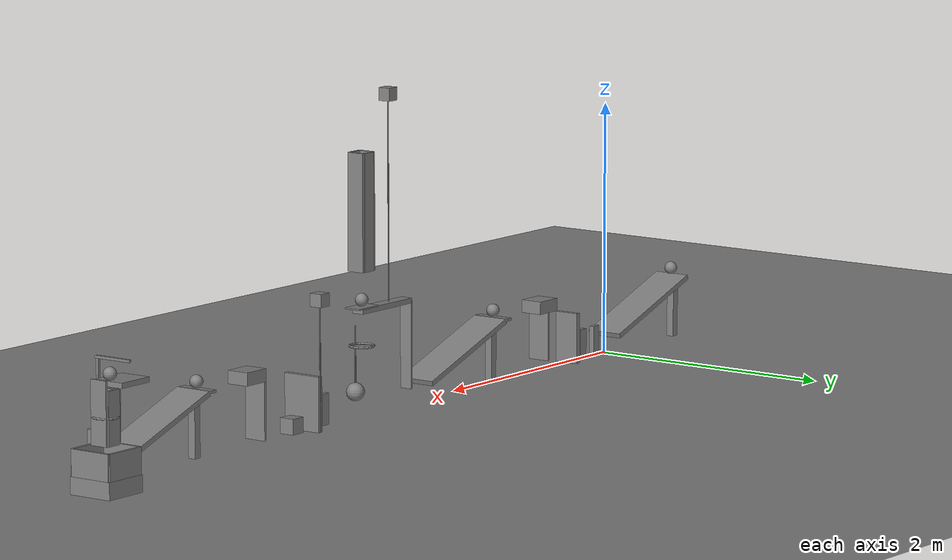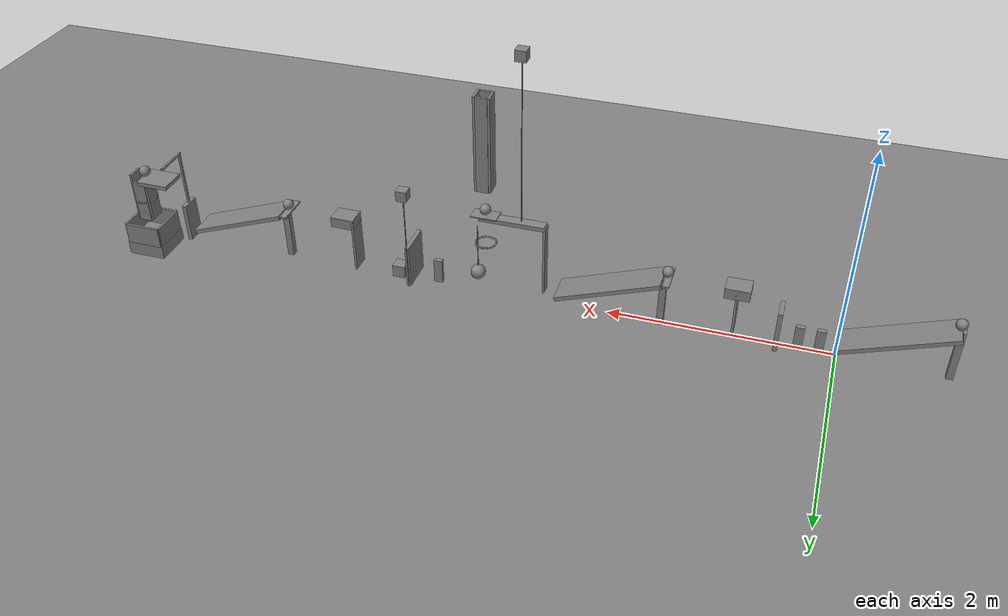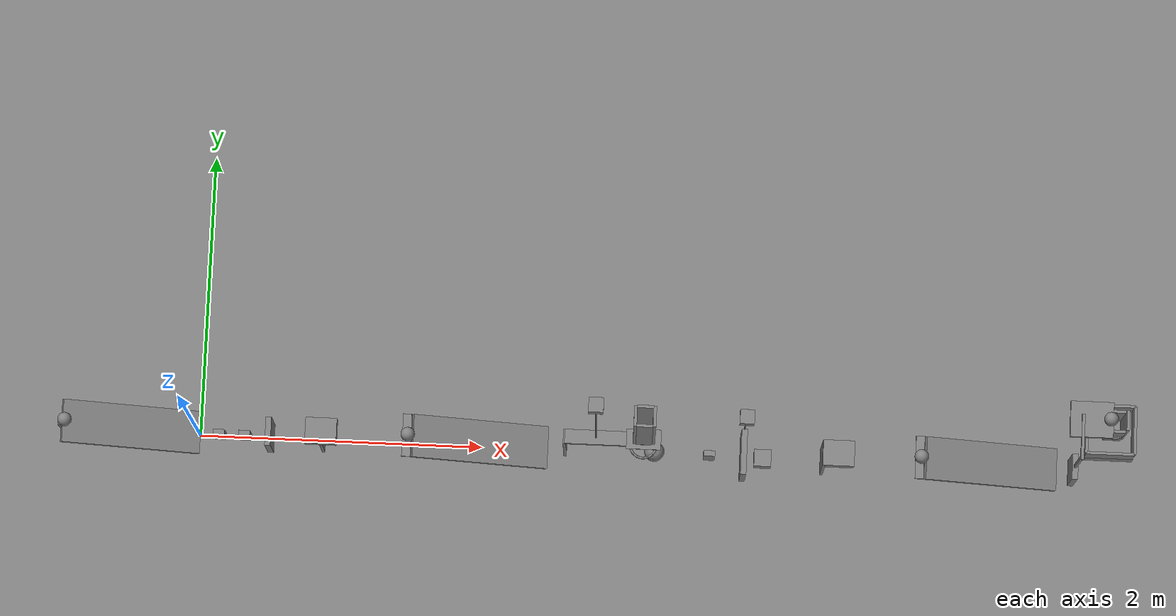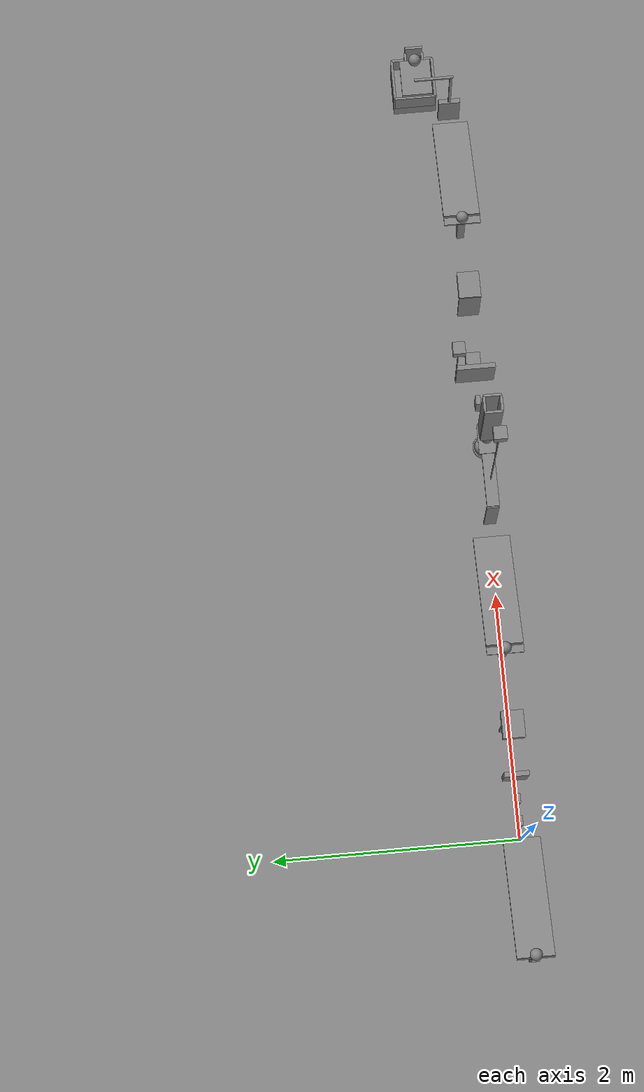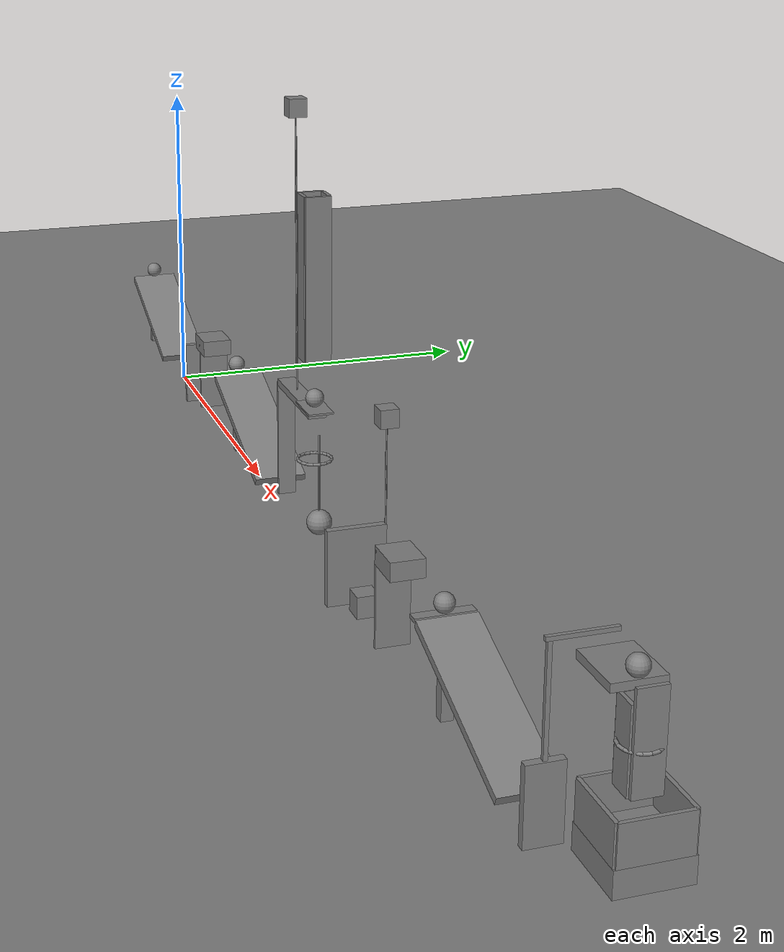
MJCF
<mujoco model="passive_ramp_and_pendulum_chain">
  <compiler angle="radian"/>
  <option timestep="0.002"/>
  <worldbody>
    <geom name="floor" type="plane" size="18 18 0.1" friction="0.7 0 0"/>
    <body name="ramp1">
      <geom name="ramp1_deck" type="box" pos="-0.469846 0 0.32101" size="0.5 0.15 0.02" euler="0 0.349066 0" friction="0.7 0 0" solref="0.01 0.690107"/>
      <geom name="ramp1_leg" type="box" pos="-0.939693 0 0.24601" size="0.03 0.03 0.24601" friction="0.7 0 0" solref="0.01 0.690107"/>
    </body>
    <body name="ball1" pos="-0.915751 0 0.557799">
      <freejoint/>
      <geom name="ball1" type="sphere" pos="0 0 0" size="0.05" mass="0.2" condim="6" friction="0.7 0 0" solref="0.01 0.690107"/>
    </body>
    <body name="domino1" pos="0.14 0 0.12">
      <freejoint/>
      <geom name="domino1" type="box" pos="0 0 0" size="0.04 0.02 0.12" mass="0.25" friction="0.7 0 0" solref="0.01 0.690107"/>
    </body>
    <body name="domino2" pos="0.32 0 0.12">
      <freejoint/>
      <geom name="domino2" type="box" pos="0 0 0" size="0.04 0.02 0.12" mass="0.25" friction="0.7 0 0" solref="0.01 0.690107"/>
    </body>
    <body name="flap1" pos="0.5 0 0">
      <joint name="flap1_hinge" type="hinge" pos="0 0 0" axis="0 1 0" limited="true" range="0 1.13446" damping="0.04"/>
      <geom name="flap1" type="box" pos="0 0 0.2" size="0.02 0.1 0.2" mass="0.3" friction="0.7 0 0" solref="0.01 0.690107"/>
    </body>
    <body name="cart1" pos="0.88 0 0.510815">
      <joint name="cart1_slide" type="slide" pos="0 0 0" axis="1 0 0" limited="true" range="0 0.6" damping="0.2"/>
      <geom name="cart1" type="box" pos="0 0 0" size="0.11 0.09 0.05" mass="0.49" friction="0.7 0 0" solref="0.01 0.690107"/>
      <geom name="cart1 striker" type="box" pos="0 0 -0.215815" size="0.01 0.09 0.215" mass="0.01" friction="0.7 0 0" solref="0.01 0.690107"/>
    </body>
    <body name="ramp2">
      <geom name="ramp2_deck" type="box" pos="1.98985 0 0.32101" size="0.5 0.15 0.02" euler="0 0.349066 0" friction="0.7 0 0" solref="0.01 0.690107"/>
      <geom name="ramp2_leg" type="box" pos="1.52 0 0.24601" size="0.03 0.03 0.24601" friction="0.7 0 0" solref="0.01 0.690107"/>
    </body>
    <body name="ramp2 staging pad">
      <geom name="ramp2 staging pad" type="box" pos="1.48 0 0.500815" size="0.03 0.15 0.01" friction="0.7 0 0" solref="0.01 0.690107"/>
    </body>
    <body name="ball2" pos="1.49 0 0.560815">
      <freejoint/>
      <geom name="ball2" type="sphere" pos="0 0 0" size="0.05" mass="0.2" condim="6" friction="0.7 0 0" solref="0.01 0.690107"/>
    </body>
    <body name="lever1" pos="2.88969 0 0.8">
      <joint name="lever1_hinge" type="hinge" pos="0 0 0" axis="0 1 0" limited="true" range="-0.785398 0" damping="0.04"/>
      <geom name="lever1" type="box" pos="0 0 0" size="0.3 0.05 0.02" mass="0.187" friction="0.7 0 0" solref="0.01 0.690107"/>
      <geom name="lever1 striker" type="box" pos="-0.3 0 -0.34" size="0.01 0.05 0.34" mass="0.005" friction="0.7 0 0" solref="0.01 0.690107"/>
      <geom name="lever1 carrier" type="box" pos="0.25 0 0.025" size="0.12 0.07 0.005" mass="0.005" friction="0.7 0 0" solref="0.01 0.690107"/>
      <geom name="lever1 counterweight" type="box" pos="-0.08 0 1.6" size="0.05 0.05 0.05" mass="0.3" friction="0.7 0 0" solref="0.01 0.690107"/>
      <geom name="lever1 counterweight rod" type="capsule" size="0.005" fromto="-0.08 0 0 -0.08 0 1.55" mass="0.003" friction="0.7 0 0" solref="0.01 0.690107"/>
    </body>
    <body name="ball3" pos="3.13969 0 0.88">
      <freejoint/>
      <geom name="ball3" type="sphere" pos="0 0 0" size="0.05" mass="0.2" condim="6" friction="0.7 0 0" solref="0.01 0.690107"/>
    </body>
    <body name="ring1">
      <geom name="ring1_00" type="capsule" size="0.008" fromto="3.23334 0 0.53 3.22621 0.0358366 0.53" friction="0.7 0 0" solref="0.01 0.690107"/>
      <geom name="ring1_01" type="capsule" size="0.008" fromto="3.22621 0.0358366 0.53 3.20591 0.0662175 0.53" friction="0.7 0 0" solref="0.01 0.690107"/>
      <geom name="ring1_02" type="capsule" size="0.008" fromto="3.20591 0.0662175 0.53 3.17553 0.0865173 0.53" friction="0.7 0 0" solref="0.01 0.690107"/>
      <geom name="ring1_03" type="capsule" size="0.008" fromto="3.17553 0.0865173 0.53 3.13969 0.0936457 0.53" friction="0.7 0 0" solref="0.01 0.690107"/>
      <geom name="ring1_04" type="capsule" size="0.008" fromto="3.13969 0.0936457 0.53 3.10386 0.0865173 0.53" friction="0.7 0 0" solref="0.01 0.690107"/>
      <geom name="ring1_05" type="capsule" size="0.008" fromto="3.10386 0.0865173 0.53 3.07348 0.0662175 0.53" friction="0.7 0 0" solref="0.01 0.690107"/>
      <geom name="ring1_06" type="capsule" size="0.008" fromto="3.07348 0.0662175 0.53 3.05318 0.0358366 0.53" friction="0.7 0 0" solref="0.01 0.690107"/>
      <geom name="ring1_07" type="capsule" size="0.008" fromto="3.05318 0.0358366 0.53 3.04605 1.14683e-17 0.53" friction="0.7 0 0" solref="0.01 0.690107"/>
      <geom name="ring1_08" type="capsule" size="0.008" fromto="3.04605 1.14683e-17 0.53 3.05318 -0.0358366 0.53" friction="0.7 0 0" solref="0.01 0.690107"/>
      <geom name="ring1_09" type="capsule" size="0.008" fromto="3.05318 -0.0358366 0.53 3.07348 -0.0662175 0.53" friction="0.7 0 0" solref="0.01 0.690107"/>
      <geom name="ring1_10" type="capsule" size="0.008" fromto="3.07348 -0.0662175 0.53 3.10386 -0.0865173 0.53" friction="0.7 0 0" solref="0.01 0.690107"/>
      <geom name="ring1_11" type="capsule" size="0.008" fromto="3.10386 -0.0865173 0.53 3.13969 -0.0936457 0.53" friction="0.7 0 0" solref="0.01 0.690107"/>
      <geom name="ring1_12" type="capsule" size="0.008" fromto="3.13969 -0.0936457 0.53 3.17553 -0.0865173 0.53" friction="0.7 0 0" solref="0.01 0.690107"/>
      <geom name="ring1_13" type="capsule" size="0.008" fromto="3.17553 -0.0865173 0.53 3.20591 -0.0662175 0.53" friction="0.7 0 0" solref="0.01 0.690107"/>
      <geom name="ring1_14" type="capsule" size="0.008" fromto="3.20591 -0.0662175 0.53 3.22621 -0.0358366 0.53" friction="0.7 0 0" solref="0.01 0.690107"/>
      <geom name="ring1_15" type="capsule" size="0.008" fromto="3.22621 -0.0358366 0.53 3.23334 -2.29366e-17 0.53" friction="0.7 0 0" solref="0.01 0.690107"/>
    </body>
    <body name="ball3 near guide">
      <geom name="ball3 near guide" type="box" pos="3.07469 0 1.55" size="0.01 0.07 0.45" friction="0.7 0 0" solref="0.01 0.690107"/>
    </body>
    <body name="ball3 far guide">
      <geom name="ball3 far guide" type="box" pos="3.20469 0 1.55" size="0.01 0.07 0.45" friction="0.7 0 0" solref="0.01 0.690107"/>
    </body>
    <body name="ball3 left guide">
      <geom name="ball3 left guide" type="box" pos="3.13969 0.065 1.55" size="0.055 0.01 0.45" friction="0.7 0 0" solref="0.01 0.690107"/>
    </body>
    <body name="ball3 right guide">
      <geom name="ball3 right guide" type="box" pos="3.13969 -0.065 1.55" size="0.055 0.01 0.45" friction="0.7 0 0" solref="0.01 0.690107"/>
    </body>
    <body name="pendulum1" pos="3.21969 0 0.690557">
      <joint name="pendulum1_hinge" type="hinge" pos="0 0 0" axis="0 1 0" limited="true" range="-0.698132 0" damping="0.04"/>
      <geom name="pendulum1" type="sphere" pos="0 0 -0.5" size="0.07" mass="0.01" friction="0.7 0 0" solref="0.01 0.690107"/>
      <geom name="pendulum1 rod" type="capsule" size="0.005" fromto="0 0 0 0 0 -0.43" mass="0.34" friction="0.7 0 0" solref="0.01 0.690107"/>
    </body>
    <body name="domino3" pos="3.60778 0 0.12">
      <freejoint/>
      <geom name="domino3" type="box" pos="0 0 0" size="0.04 0.02 0.12" mass="0.25" friction="0.7 0 0" solref="0.01 0.690107"/>
    </body>
    <body name="door1" pos="3.84778 0 0">
      <joint name="door1_hinge" type="hinge" pos="0 0 0" axis="0 1 0" limited="true" range="0 1.22173" damping="0.04"/>
      <geom name="door1" type="box" pos="0 0 0.21" size="0.02 0.16 0.21" mass="0.24" friction="0.7 0 0" solref="0.01 0.690107"/>
      <geom name="door1 counterweight" type="box" pos="0 0.16 1" size="0.05 0.05 0.05" mass="0.2" friction="0.7 0 0" solref="0.01 0.690107"/>
      <geom name="door1 counterweight rod" type="capsule" size="0.005" fromto="0 0.16 0.005 0 0.16 0.95" mass="0.01" friction="0.7 0 0" solref="0.01 0.690107"/>
    </body>
    <body name="block1" pos="3.98778 0 0.06">
      <freejoint/>
      <geom name="block1" type="box" pos="0 0 0" size="0.06 0.06 0.06" mass="0.35" friction="0.7 0 0" solref="0.01 0.690107"/>
    </body>
    <body name="cart2" pos="4.50778 0 0.510815">
      <joint name="cart2_slide" type="slide" pos="0 0 0" axis="1 0 0" limited="true" range="0 0.55" damping="0.2"/>
      <geom name="cart2" type="box" pos="0 0 0" size="0.11 0.09 0.05" mass="0.49" friction="0.7 0 0" solref="0.01 0.690107"/>
      <geom name="cart2 striker" type="box" pos="-0.1 0 -0.230815" size="0.01 0.09 0.26" mass="0.01" friction="0.7 0 0" solref="0.01 0.690107"/>
    </body>
    <body name="ramp3">
      <geom name="ramp3_deck" type="box" pos="5.58762 0 0.32101" size="0.5 0.15 0.02" euler="0 0.349066 0" friction="0.7 0 0" solref="0.01 0.690107"/>
      <geom name="ramp3_leg" type="box" pos="5.11778 0 0.24601" size="0.03 0.03 0.24601" friction="0.7 0 0" solref="0.01 0.690107"/>
    </body>
    <body name="ramp3 staging pad">
      <geom name="ramp3 staging pad" type="box" pos="5.07778 0 0.500815" size="0.03 0.15 0.01" friction="0.7 0 0" solref="0.01 0.690107"/>
    </body>
    <body name="ball4" pos="5.08778 0 0.560815">
      <freejoint/>
      <geom name="ball4" type="sphere" pos="0 0 0" size="0.05" mass="0.2" condim="6" friction="0.7 0 0" solref="0.01 0.690107"/>
    </body>
    <body name="flap2" pos="6.17747 0 0">
      <joint name="flap2_hinge" type="hinge" pos="0 0 0" axis="0 1 0" limited="true" range="0 1.0472" damping="0.04"/>
      <geom name="flap2" type="box" pos="0 0 0.19" size="0.02 0.09 0.19" mass="0.27" friction="0.7 0 0" solref="0.01 0.690107"/>
      <geom name="flap2 riser" type="box" pos="0 0 0.64" size="0.01 0.01 0.26" mass="0.006" friction="0.7 0 0" solref="0.01 0.690107"/>
      <geom name="flap2 striker" type="box" pos="0 0.14 0.91" size="0.01 0.16 0.01" mass="0.004" friction="0.7 0 0" solref="0.01 0.690107"/>
    </body>
    <body name="shelf1">
      <geom name="shelf1" type="box" pos="6.24747 0.28 0.78" size="0.15 0.125 0.02" friction="0.7 0 0" solref="0.01 0.690107"/>
    </body>
    <body name="ball5" pos="6.37747 0.28 0.85">
      <freejoint/>
      <geom name="ball5" type="sphere" pos="0 0 0" size="0.05" mass="0.2" condim="6" friction="0.7 0 0" solref="0.01 0.690107"/>
    </body>
    <body name="ring2">
      <geom name="ring2_00" type="capsule" size="0.008" fromto="6.52111 0.28 0.55 6.51399 0.315837 0.55" friction="0.7 0 0" solref="0.01 0.690107"/>
      <geom name="ring2_01" type="capsule" size="0.008" fromto="6.51399 0.315837 0.55 6.49369 0.346217 0.55" friction="0.7 0 0" solref="0.01 0.690107"/>
      <geom name="ring2_02" type="capsule" size="0.008" fromto="6.49369 0.346217 0.55 6.4633 0.366517 0.55" friction="0.7 0 0" solref="0.01 0.690107"/>
      <geom name="ring2_03" type="capsule" size="0.008" fromto="6.4633 0.366517 0.55 6.42747 0.373646 0.55" friction="0.7 0 0" solref="0.01 0.690107"/>
      <geom name="ring2_04" type="capsule" size="0.008" fromto="6.42747 0.373646 0.55 6.39163 0.366517 0.55" friction="0.7 0 0" solref="0.01 0.690107"/>
      <geom name="ring2_05" type="capsule" size="0.008" fromto="6.39163 0.366517 0.55 6.36125 0.346217 0.55" friction="0.7 0 0" solref="0.01 0.690107"/>
      <geom name="ring2_06" type="capsule" size="0.008" fromto="6.36125 0.346217 0.55 6.34095 0.315837 0.55" friction="0.7 0 0" solref="0.01 0.690107"/>
      <geom name="ring2_07" type="capsule" size="0.008" fromto="6.34095 0.315837 0.55 6.33382 0.28 0.55" friction="0.7 0 0" solref="0.01 0.690107"/>
      <geom name="ring2_08" type="capsule" size="0.008" fromto="6.33382 0.28 0.55 6.34095 0.244163 0.55" friction="0.7 0 0" solref="0.01 0.690107"/>
      <geom name="ring2_09" type="capsule" size="0.008" fromto="6.34095 0.244163 0.55 6.36125 0.213783 0.55" friction="0.7 0 0" solref="0.01 0.690107"/>
      <geom name="ring2_10" type="capsule" size="0.008" fromto="6.36125 0.213783 0.55 6.39163 0.193483 0.55" friction="0.7 0 0" solref="0.01 0.690107"/>
      <geom name="ring2_11" type="capsule" size="0.008" fromto="6.39163 0.193483 0.55 6.42747 0.186354 0.55" friction="0.7 0 0" solref="0.01 0.690107"/>
      <geom name="ring2_12" type="capsule" size="0.008" fromto="6.42747 0.186354 0.55 6.4633 0.193483 0.55" friction="0.7 0 0" solref="0.01 0.690107"/>
      <geom name="ring2_13" type="capsule" size="0.008" fromto="6.4633 0.193483 0.55 6.49369 0.213783 0.55" friction="0.7 0 0" solref="0.01 0.690107"/>
      <geom name="ring2_14" type="capsule" size="0.008" fromto="6.49369 0.213783 0.55 6.51399 0.244163 0.55" friction="0.7 0 0" solref="0.01 0.690107"/>
      <geom name="ring2_15" type="capsule" size="0.008" fromto="6.51399 0.244163 0.55 6.52111 0.28 0.55" friction="0.7 0 0" solref="0.01 0.690107"/>
    </body>
    <body name="ball5 far guide">
      <geom name="ball5 far guide" type="box" pos="6.49747 0.28 0.5875" size="0.01 0.07 0.2375" friction="0.7 0 0" solref="0.01 0.690107"/>
    </body>
    <body name="ball5 near guide">
      <geom name="ball5 near guide" type="box" pos="6.35747 0.28 0.55" size="0.01 0.07 0.19" friction="0.7 0 0" solref="0.01 0.690107"/>
    </body>
    <body name="ball5 left guide">
      <geom name="ball5 left guide" type="box" pos="6.42747 0.35 0.55" size="0.06 0.01 0.2" friction="0.7 0 0" solref="0.01 0.690107"/>
    </body>
    <body name="ball5 right guide">
      <geom name="ball5 right guide" type="box" pos="6.42747 0.21 0.55" size="0.06 0.01 0.2" friction="0.7 0 0" solref="0.01 0.690107"/>
    </body>
    <body name="bin pedestal">
      <geom name="bin pedestal" type="box" pos="6.42747 0.28 0.065" size="0.18 0.18 0.065" friction="0.7 0 0" solref="0.01 0.690107"/>
    </body>
    <body name="bin1">
      <geom name="bin1_base" type="box" pos="6.42747 0.28 0.14" size="0.17 0.17 0.01" friction="0.7 0 0" solref="0.01 0.690107"/>
      <geom name="bin1_near_wall" type="box" pos="6.25747 0.28 0.23" size="0.01 0.17 0.1" friction="0.7 0 0" solref="0.01 0.690107"/>
      <geom name="bin1_far_wall" type="box" pos="6.59747 0.28 0.23" size="0.01 0.17 0.1" friction="0.7 0 0" solref="0.01 0.690107"/>
      <geom name="bin1_left_wall" type="box" pos="6.42747 0.45 0.23" size="0.17 0.01 0.1" friction="0.7 0 0" solref="0.01 0.690107"/>
      <geom name="bin1_right_wall" type="box" pos="6.42747 0.11 0.23" size="0.17 0.01 0.1" friction="0.7 0 0" solref="0.01 0.690107"/>
    </body>
  </worldbody>
  <keyframe>
    <key name="start" qpos="-0.915751 0 0.557799 1 0 0 0 0.14 0 0.12 1 0 0 0 0.32 0 0.12 1 0 0 0 0 0 1.49 0 0.560815 1 0 0 0 0 3.13969 0 0.88 1 0 0 0 0 3.60778 0 0.12 1 0 0 0 0 3.98778 0 0.06 1 0 0 0 0 5.08778 0 0.560815 1 0 0 0 0 6.37747 0.28 0.85 1 0 0 0" qvel="0 0 0 0 0 0 0 0 0 0 0 0 0 0 0 0 0 0 0 0 0 0 0 0 0 0 0 0 0 0 0 0 0 0 0 0 0 0 0 0 0 0 0 0 0 0 0 0 0 0 0 0 0 0 0 0 0 0 0 0 0"/>
  </keyframe>
</mujoco>
